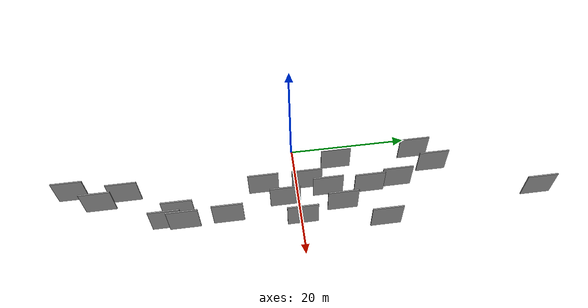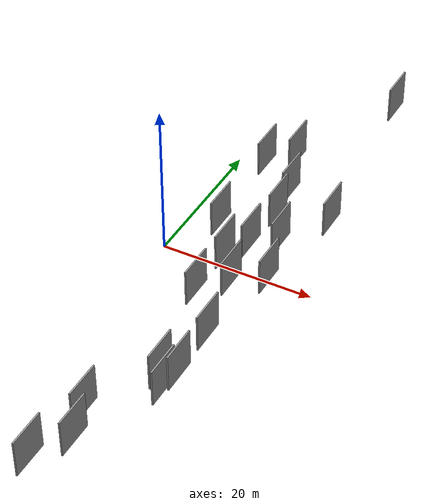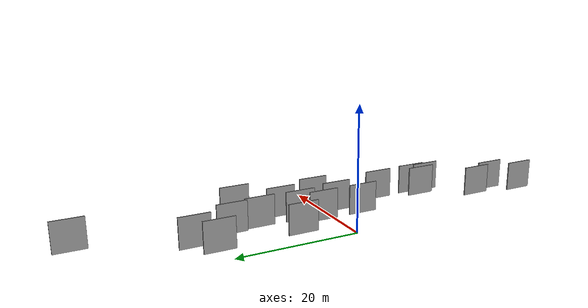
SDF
<sdf version="1.6">
 <world name="default">
  <scene>
   <sky><clouds><speed>12</speed></clouds></sky>
   <ambient>0.4 0.4 0.4 1</ambient>
   <background>0.7 0.7 0.7 1</background>
   <shadows>1</shadows>
  </scene>
  <gravity>0 0 -9.8066</gravity>
  <magnetic_field>6e-06 2.3e-05 -4.2e-05</magnetic_field>
  <physics default="0" name="default_physics" type="ode">
   <ode>
    <solver>
     <type>quick</type>
     <iters>10</iters>
     <sor>1.0</sor>
     <use_dynamic_moi_rescaling>0</use_dynamic_moi_rescaling>
    </solver>
    <constraints>
     <cfm>0</cfm>
     <erp>0.2</erp>
     <contact_max_correcting_vel>100</contact_max_correcting_vel>
     <contact_surface_layer>0.001</contact_surface_layer>
    </constraints>
   </ode>
   <max_step_size>0.004</max_step_size>
   <real_time_factor>1</real_time_factor>
   <real_time_update_rate>250</real_time_update_rate>
  </physics>
  <light name="sun" type="directional">
   <pose>0 0 10 0 0 0</pose>
   <diffuse>0.8 0.8 0.8 1</diffuse>
   <specular>0.2 0.2 0.2 1</specular>
   <attenuation>
    <range>1000</range>
    <constant>0.9</constant>
    <linear>0.01</linear>
    <quadratic>0.001</quadratic>
   </attenuation>
   <direction>-0.5 0.1 -0.9</direction>
  </light>
  <model name="grey_wall_1">
   <static>1</static>
   <pose>12.7183 -18.7903 0.0 0.000000 0.000000 1.570796</pose>
   <link name="link">
    <pose>0 0 2.50 0 0 0</pose>
    <collision name="collision"><geometry><box><size>5.00 0.2 5.00</size></box></geometry></collision>
    <visual name="visual">
     <cast_shadows>0</cast_shadows>
     <geometry><box><size>5.00 0.2 5.00</size></box></geometry>
     <material>
      <script>
       <uri>model://grey_wall/materials/scripts</uri>
       <uri>model://grey_wall/materials/textures</uri>
       <name>vrc/grey_wall</name>
      </script>
     </material>
    </visual>
   </link>
  </model>
  <model name="grey_wall_2">
   <static>1</static>
   <pose>7.5720 -32.5413 0.0 0.000000 0.000000 1.570796</pose>
   <link name="link">
    <pose>0 0 2.50 0 0 0</pose>
    <collision name="collision"><geometry><box><size>5.00 0.2 5.00</size></box></geometry></collision>
    <visual name="visual">
     <cast_shadows>0</cast_shadows>
     <geometry><box><size>5.00 0.2 5.00</size></box></geometry>
     <material>
      <script>
       <uri>model://grey_wall/materials/scripts</uri>
       <uri>model://grey_wall/materials/textures</uri>
       <name>vrc/grey_wall</name>
      </script>
     </material>
    </visual>
   </link>
  </model>
  <model name="grey_wall_3">
   <static>1</static>
   <pose>3.5824 20.7424 0.0 0.000000 0.000000 1.570796</pose>
   <link name="link">
    <pose>0 0 2.50 0 0 0</pose>
    <collision name="collision"><geometry><box><size>5.00 0.2 5.00</size></box></geometry></collision>
    <visual name="visual">
     <cast_shadows>0</cast_shadows>
     <geometry><box><size>5.00 0.2 5.00</size></box></geometry>
     <material>
      <script>
       <uri>model://grey_wall/materials/scripts</uri>
       <uri>model://grey_wall/materials/textures</uri>
       <name>vrc/grey_wall</name>
      </script>
     </material>
    </visual>
   </link>
  </model>
  <model name="grey_wall_4">
   <static>1</static>
   <pose>7.5482 1.7457 0.0 0.000000 0.000000 1.570796</pose>
   <link name="link">
    <pose>0 0 2.50 0 0 0</pose>
    <collision name="collision"><geometry><box><size>5.00 0.2 5.00</size></box></geometry></collision>
    <visual name="visual">
     <cast_shadows>0</cast_shadows>
     <geometry><box><size>5.00 0.2 5.00</size></box></geometry>
     <material>
      <script>
       <uri>model://grey_wall/materials/scripts</uri>
       <uri>model://grey_wall/materials/textures</uri>
       <name>vrc/grey_wall</name>
      </script>
     </material>
    </visual>
   </link>
  </model>
  <model name="grey_wall_5">
   <static>1</static>
   <pose>16.3264 13.5183 0.0 0.000000 0.000000 1.570796</pose>
   <link name="link">
    <pose>0 0 2.50 0 0 0</pose>
    <collision name="collision"><geometry><box><size>5.00 0.2 5.00</size></box></geometry></collision>
    <visual name="visual">
     <cast_shadows>0</cast_shadows>
     <geometry><box><size>5.00 0.2 5.00</size></box></geometry>
     <material>
      <script>
       <uri>model://grey_wall/materials/scripts</uri>
       <uri>model://grey_wall/materials/textures</uri>
       <name>vrc/grey_wall</name>
      </script>
     </material>
    </visual>
   </link>
  </model>
  <model name="grey_wall_6">
   <static>1</static>
   <pose>9.6237 11.9498 0.0 0.000000 0.000000 1.570796</pose>
   <link name="link">
    <pose>0 0 2.50 0 0 0</pose>
    <collision name="collision"><geometry><box><size>5.00 0.2 5.00</size></box></geometry></collision>
    <visual name="visual">
     <cast_shadows>0</cast_shadows>
     <geometry><box><size>5.00 0.2 5.00</size></box></geometry>
     <material>
      <script>
       <uri>model://grey_wall/materials/scripts</uri>
       <uri>model://grey_wall/materials/textures</uri>
       <name>vrc/grey_wall</name>
      </script>
     </material>
    </visual>
   </link>
  </model>
  <model name="grey_wall_7">
   <static>1</static>
   <pose>12.3189 -21.5882 0.0 0.000000 0.000000 1.570796</pose>
   <link name="link">
    <pose>0 0 2.50 0 0 0</pose>
    <collision name="collision"><geometry><box><size>5.00 0.2 5.00</size></box></geometry></collision>
    <visual name="visual">
     <cast_shadows>0</cast_shadows>
     <geometry><box><size>5.00 0.2 5.00</size></box></geometry>
     <material>
      <script>
       <uri>model://grey_wall/materials/scripts</uri>
       <uri>model://grey_wall/materials/textures</uri>
       <name>vrc/grey_wall</name>
      </script>
     </material>
    </visual>
   </link>
  </model>
  <model name="grey_wall_8">
   <static>1</static>
   <pose>14.2685 0.2228 0.0 0.000000 0.000000 1.570796</pose>
   <link name="link">
    <pose>0 0 2.50 0 0 0</pose>
    <collision name="collision"><geometry><box><size>5.00 0.2 5.00</size></box></geometry></collision>
    <visual name="visual">
     <cast_shadows>0</cast_shadows>
     <geometry><box><size>5.00 0.2 5.00</size></box></geometry>
     <material>
      <script>
       <uri>model://grey_wall/materials/scripts</uri>
       <uri>model://grey_wall/materials/textures</uri>
       <name>vrc/grey_wall</name>
      </script>
     </material>
    </visual>
   </link>
  </model>
  <model name="grey_wall_9">
   <static>1</static>
   <pose>9.0764 16.7227 0.0 0.000000 0.000000 1.570796</pose>
   <link name="link">
    <pose>0 0 2.50 0 0 0</pose>
    <collision name="collision"><geometry><box><size>5.00 0.2 5.00</size></box></geometry></collision>
    <visual name="visual">
     <cast_shadows>0</cast_shadows>
     <geometry><box><size>5.00 0.2 5.00</size></box></geometry>
     <material>
      <script>
       <uri>model://grey_wall/materials/scripts</uri>
       <uri>model://grey_wall/materials/textures</uri>
       <name>vrc/grey_wall</name>
      </script>
     </material>
    </visual>
   </link>
  </model>
  <model name="grey_wall_10">
   <static>1</static>
   <pose>10.7737 -19.5997 0.0 0.000000 0.000000 1.570796</pose>
   <link name="link">
    <pose>0 0 2.50 0 0 0</pose>
    <collision name="collision"><geometry><box><size>5.00 0.2 5.00</size></box></geometry></collision>
    <visual name="visual">
     <cast_shadows>0</cast_shadows>
     <geometry><box><size>5.00 0.2 5.00</size></box></geometry>
     <material>
      <script>
       <uri>model://grey_wall/materials/scripts</uri>
       <uri>model://grey_wall/materials/textures</uri>
       <name>vrc/grey_wall</name>
      </script>
     </material>
    </visual>
   </link>
  </model>
  <model name="grey_wall_11">
   <static>1</static>
   <pose>4.0528 7.1282 0.0 0.000000 0.000000 1.570796</pose>
   <link name="link">
    <pose>0 0 2.50 0 0 0</pose>
    <collision name="collision"><geometry><box><size>5.00 0.2 5.00</size></box></geometry></collision>
    <visual name="visual">
     <cast_shadows>0</cast_shadows>
     <geometry><box><size>5.00 0.2 5.00</size></box></geometry>
     <material>
      <script>
       <uri>model://grey_wall/materials/scripts</uri>
       <uri>model://grey_wall/materials/textures</uri>
       <name>vrc/grey_wall</name>
      </script>
     </material>
    </visual>
   </link>
  </model>
  <model name="grey_wall_12">
   <static>1</static>
   <pose>12.4394 7.0411 0.0 0.000000 0.000000 1.570796</pose>
   <link name="link">
    <pose>0 0 2.50 0 0 0</pose>
    <collision name="collision"><geometry><box><size>5.00 0.2 5.00</size></box></geometry></collision>
    <visual name="visual">
     <cast_shadows>0</cast_shadows>
     <geometry><box><size>5.00 0.2 5.00</size></box></geometry>
     <material>
      <script>
       <uri>model://grey_wall/materials/scripts</uri>
       <uri>model://grey_wall/materials/textures</uri>
       <name>vrc/grey_wall</name>
      </script>
     </material>
    </visual>
   </link>
  </model>
  <model name="grey_wall_13">
   <static>1</static>
   <pose>10.4718 -2.1907 0.0 0.000000 0.000000 1.570796</pose>
   <link name="link">
    <pose>0 0 2.50 0 0 0</pose>
    <collision name="collision"><geometry><box><size>5.00 0.2 5.00</size></box></geometry></collision>
    <visual name="visual">
     <cast_shadows>0</cast_shadows>
     <geometry><box><size>5.00 0.2 5.00</size></box></geometry>
     <material>
      <script>
       <uri>model://grey_wall/materials/scripts</uri>
       <uri>model://grey_wall/materials/textures</uri>
       <name>vrc/grey_wall</name>
      </script>
     </material>
    </visual>
   </link>
  </model>
  <model name="grey_wall_14">
   <static>1</static>
   <pose>7.5334 -5.5211 0.0 0.000000 0.000000 1.570796</pose>
   <link name="link">
    <pose>0 0 2.50 0 0 0</pose>
    <collision name="collision"><geometry><box><size>5.00 0.2 5.00</size></box></geometry></collision>
    <visual name="visual">
     <cast_shadows>0</cast_shadows>
     <geometry><box><size>5.00 0.2 5.00</size></box></geometry>
     <material>
      <script>
       <uri>model://grey_wall/materials/scripts</uri>
       <uri>model://grey_wall/materials/textures</uri>
       <name>vrc/grey_wall</name>
      </script>
     </material>
    </visual>
   </link>
  </model>
  <model name="grey_wall_15">
   <static>1</static>
   <pose>13.7086 39.7170 0.0 0.000000 0.000000 1.570796</pose>
   <link name="link">
    <pose>0 0 2.50 0 0 0</pose>
    <collision name="collision"><geometry><box><size>5.00 0.2 5.00</size></box></geometry></collision>
    <visual name="visual">
     <cast_shadows>0</cast_shadows>
     <geometry><box><size>5.00 0.2 5.00</size></box></geometry>
     <material>
      <script>
       <uri>model://grey_wall/materials/scripts</uri>
       <uri>model://grey_wall/materials/textures</uri>
       <name>vrc/grey_wall</name>
      </script>
     </material>
    </visual>
   </link>
  </model>
  <model name="grey_wall_16">
   <static>1</static>
   <pose>6.7103 23.3654 0.0 0.000000 0.000000 1.570796</pose>
   <link name="link">
    <pose>0 0 2.50 0 0 0</pose>
    <collision name="collision"><geometry><box><size>5.00 0.2 5.00</size></box></geometry></collision>
    <visual name="visual">
     <cast_shadows>0</cast_shadows>
     <geometry><box><size>5.00 0.2 5.00</size></box></geometry>
     <material>
      <script>
       <uri>model://grey_wall/materials/scripts</uri>
       <uri>model://grey_wall/materials/textures</uri>
       <name>vrc/grey_wall</name>
      </script>
     </material>
    </visual>
   </link>
  </model>
  <model name="grey_wall_17">
   <static>1</static>
   <pose>4.8845 -37.1571 0.0 0.000000 0.000000 1.570796</pose>
   <link name="link">
    <pose>0 0 2.50 0 0 0</pose>
    <collision name="collision"><geometry><box><size>5.00 0.2 5.00</size></box></geometry></collision>
    <visual name="visual">
     <cast_shadows>0</cast_shadows>
     <geometry><box><size>5.00 0.2 5.00</size></box></geometry>
     <material>
      <script>
       <uri>model://grey_wall/materials/scripts</uri>
       <uri>model://grey_wall/materials/textures</uri>
       <name>vrc/grey_wall</name>
      </script>
     </material>
    </visual>
   </link>
  </model>
  <model name="grey_wall_18">
   <static>1</static>
   <pose>9.3553 5.0382 0.0 0.000000 0.000000 1.570796</pose>
   <link name="link">
    <pose>0 0 2.50 0 0 0</pose>
    <collision name="collision"><geometry><box><size>5.00 0.2 5.00</size></box></geometry></collision>
    <visual name="visual">
     <cast_shadows>0</cast_shadows>
     <geometry><box><size>5.00 0.2 5.00</size></box></geometry>
     <material>
      <script>
       <uri>model://grey_wall/materials/scripts</uri>
       <uri>model://grey_wall/materials/textures</uri>
       <name>vrc/grey_wall</name>
      </script>
     </material>
    </visual>
   </link>
  </model>
  <model name="grey_wall_19">
   <static>1</static>
   <pose>6.2324 -28.4190 0.0 0.000000 0.000000 1.570796</pose>
   <link name="link">
    <pose>0 0 2.50 0 0 0</pose>
    <collision name="collision"><geometry><box><size>5.00 0.2 5.00</size></box></geometry></collision>
    <visual name="visual">
     <cast_shadows>0</cast_shadows>
     <geometry><box><size>5.00 0.2 5.00</size></box></geometry>
     <material>
      <script>
       <uri>model://grey_wall/materials/scripts</uri>
       <uri>model://grey_wall/materials/textures</uri>
       <name>vrc/grey_wall</name>
      </script>
     </material>
    </visual>
   </link>
  </model>
  <model name="grey_wall_20">
   <static>1</static>
   <pose>12.4793 -11.6744 0.0 0.000000 0.000000 1.570796</pose>
   <link name="link">
    <pose>0 0 2.50 0 0 0</pose>
    <collision name="collision"><geometry><box><size>5.00 0.2 5.00</size></box></geometry></collision>
    <visual name="visual">
     <cast_shadows>0</cast_shadows>
     <geometry><box><size>5.00 0.2 5.00</size></box></geometry>
     <material>
      <script>
       <uri>model://grey_wall/materials/scripts</uri>
       <uri>model://grey_wall/materials/textures</uri>
       <name>vrc/grey_wall</name>
      </script>
     </material>
    </visual>
   </link>
  </model>
 </world>
</sdf>
